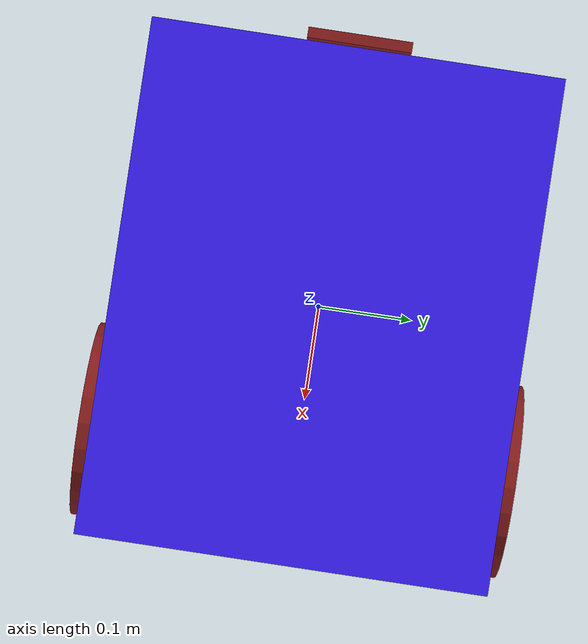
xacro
<?xml version="1.0"?>
<robot name="my_robot" xmlns:xacro="http://www.ros.org/wiki/xacro">

    <xacro:include filename="common_properties.xacro"/>
    <xacro:include filename="mobile_base_gazebo.xacro"/>
    <xacro:include filename="camera.xacro"/>

    <xacro:property name="base_length" value="0.5"/>
    <xacro:property name="base_width" value="0.4"/>
    <xacro:property name="base_height" value="0.2"/>

    <xacro:property name="right_wheel_length" value="0.02"/>
    <xacro:property name="left_wheel_length" value="0.02"/>

    <xacro:property name="caster_wheel_radius" value="0.05"/>

    <xacro:property name="wheel_radius" value="${2*caster_wheel_radius}"/>

    <link name="ground"/>

    <link name="base_link">
        <visual>
            <geometry>
                <box size="${base_length} ${base_width} ${base_height}"/>
            </geometry>
            <origin xyz="0 0 0" rpy="0 0 0"/>
            <material name="blue"/>
        </visual>
        <collision>
            <geometry>
                <box size="${base_length} ${base_width} ${base_height}"/>
            </geometry>
            <origin xyz="0 0 0" rpy="0 0 0"/>
        </collision>
        <xacro:box_inertia m="1" x="${base_length}" y="${base_width}" z="${base_height}"
                           o_xyz="0 0 0" o_rpy="0 0 0"/>

    </link>

    <link name="right_wheel_link">
        <visual>
            <geometry>
                <cylinder radius="${wheel_radius}" length="${right_wheel_length}"/>
            </geometry>
            <origin xyz="0 0 0" rpy="0 0 0"/>
            <material name="red"/>
        </visual>
        <collision>
            <geometry>
                <sphere radius="${wheel_radius}"/>
            </geometry>
            <origin xyz="0 0 0" rpy="0 0 0"/>
        </collision>
        <xacro:cylinder_inertia m="0.5" r="${wheel_radius}" l="${right_wheel_length}"
                                o_xyz="0 0 0" o_rpy="0 0 0"/>

    </link>

    <link name="left_wheel_link">
        <visual>
            <geometry>
                <cylinder radius="${wheel_radius}" length="${left_wheel_length}"/>
            </geometry>
            <origin xyz="0 0 0" rpy="0 0 0"/>
            <material name="red"/>
        </visual>
        <collision>
            <geometry>
                <sphere radius="${wheel_radius}"/>
            </geometry>
            <origin xyz="0 0 0" rpy="0 0 0"/>
        </collision>
        <xacro:cylinder_inertia m="0.5" r="${wheel_radius}" l="${left_wheel_length}"
                                o_xyz="0 0 0" o_rpy="0 0 0"/>

    </link>

    <link name="caster_wheel_link">
        <visual>
            <geometry>
                <sphere radius="${caster_wheel_radius}"/>
            </geometry>
            <origin xyz="0 0 0" rpy="0 0 0"/>
            <material name="red"/>
        </visual>
        <collision>
            <geometry>
                <sphere radius="${caster_wheel_radius}"/>
            </geometry>
            <origin xyz="0 0 0" rpy="0 0 0"/>
        </collision>
        <xacro:sphere_inertia m="0.2" r="${caster_wheel_radius}"
                              o_xyz="0 0 0" o_rpy="0 0 0"/>

    </link>

    <joint name="ground_base_joint" type="fixed">
        <parent link="ground"/>
        <child link="base_link"/>
        <origin xyz="0 0 ${wheel_radius+base_height/2}" rpy="0 0 0"/>
    </joint>

    <joint name="base_right_wheel" type="continuous">
        <parent link="base_link"/>
        <child link="right_wheel_link"/>
        <origin xyz="${0.3*base_length} ${(base_width+right_wheel_length)/2} -${base_height/2}" rpy="${-pi/2} 0 0"/>
        <axis xyz="0 0 -1"/>
    </joint>

    <joint name="base_left_wheel" type="continuous">
        <parent link="base_link"/>
        <child link="left_wheel_link"/>
        <origin xyz="${0.3*base_length} ${(-base_width-left_wheel_length)/2} -${base_height/2}" rpy="${-pi/2} 0 0"/>
        <axis xyz="0 0 -1"/>
    </joint>

    <joint name="base_caster_joint" type="continuous">
        <parent link="base_link"/>
        <child link="caster_wheel_link"/>
        <origin xyz="-${(base_length/4)} 0 -${caster_wheel_radius+base_height/2}" rpy="0 0 0"/>
        <axis xyz="0 -1 0"/>
    </joint>

</robot>

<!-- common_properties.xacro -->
<robot name="my_robot" xmlns:xacro="http://www.ros.org/wiki/xacro">

    <xacro:property name="base_length" value="0.5"/>
    <xacro:property name="base_width" value="0.4"/>
    <xacro:property name="base_height" value="0.2"/>

    <xacro:property name="right_wheel_length" value="0.02"/>
    <xacro:property name="left_wheel_length" value="0.02"/>

    <xacro:property name="caster_wheel_radius" value="0.05"/>

    <xacro:property name="wheel_radius" value="${2*caster_wheel_radius}"/>

    <material name="blue">
        <color rgba="0.2 0.1 0.9 1"/>
    </material>

    <material name="red">
        <color rgba="0.5 0.1 0.1 1"/>
    </material>

    <material name="yellow">
        <color rgba="1.0 1.0 0.0 1"/>
    </material>

    <material name="orange">
        <color rgba="1.0 0.65 0.0 1"/>
    </material>

    <material name="green">
        <color rgba="0.0 1.0 0.0 1"/>
    </material>

    <material name="purple">
        <color rgba="0.5 0.0 0.5 1"/>
    </material>

    <material name="white">
        <color rgba="1.0 1.0 1.0 1"/>
    </material>

    <material name="black">
        <color rgba="0.0 0.0 0.0 1"/>
    </material>

    <xacro:macro name="box_inertia" params="m x y z o_xyz o_rpy">

        <inertial>
            <mass value="${m}"/>
            <origin xyz="${o_xyz}" rpy="${o_rpy}"/>
            <inertia ixx="${(m/12)*(y**2 + z**2)}" ixy="0" ixz="0"
                     iyy="${(m/12)*(x**2 + z**2)}" iyz="0"
                     izz="${(m/12)*(y**2 + x**2)}"/>
        </inertial>

    </xacro:macro>

    <xacro:macro name="cylinder_inertia" params="m r l o_xyz o_rpy">

        <inertial>
            <mass value="${m}"/>
            <origin xyz="${o_xyz}" rpy="${o_rpy}"/>
            <inertia ixx="${(1/12)*m*(3*r**2 + l**2)}" ixy="0" ixz="0"
                     iyy="${(1/12)*m*(3*r**2 + l**2)}" iyz="0"
                     izz="${(1/2)*m*r**2}"/>
        </inertial>
    </xacro:macro>

    <xacro:macro name="sphere_inertia" params="m r o_xyz o_rpy">

        <inertial>
            <mass value="${m}"/>
            <origin xyz="${o_xyz}" rpy="${o_rpy}"/>
            <inertia ixx="${(2/5)*m*r**2}" ixy="0" ixz="0"
                     iyy="${(2/5)*m*r**2}" iyz="0"
                     izz="${(2/5)*m*r**2}"/>
        </inertial>
        </xacro:macro>
</robot>

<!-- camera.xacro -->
<robot name="my_robot" xmlns:xacro="http://www.ros.org/wiki/xacro">

    <xacro:include filename="common_properties.xacro"/>

    <xacro:property name="camera_length" value="0.01"/>
    <xacro:property name="camera_width" value="0.1"/>
    <xacro:property name="camera_height" value="0.05"/>

    <link name="camera_link">
        <visual>
            <geometry>
                <box size="${camera_length} ${camera_width} ${camera_height}"/>
            </geometry>
            <material name="red"/>
        </visual>
        <collision>
            <geometry>
                <box size="${camera_length} ${camera_width} ${camera_height}"/>
            </geometry>
        </collision>
        <xacro:box_inertia m="0.1" x="${camera_length}" y="${camera_width}" z="${camera_height}"
                           o_xyz="0 0 0" o_rpy="0 0 0"/>

    </link>

    <joint name="base_camera_joint" type="fixed">
        <parent link="base_link"/>
        <child link="camera_link"/>
        <origin xyz="-${(base_length+camera_length)/2} 0 ${base_height/2}" rpy="0 0 ${pi}"/>
    </joint>

    <gazebo reference="camera_link">
        <sensor name="camera" type="camera" >

            <camera>
                <horizontal_fov>1.3962634</horizontal_fov>
                <image>
                    <width>640</width>
                    <height>480</height>
                    <format>R8G8B8</format>
                </image>
                <clip>
                    <near>0.1</near>
                    <far>100</far>
                </clip>
                <noise>
                    <type>gaussian</type>
                    <mean>0.0</mean>
                    <stddev>0.007</stddev>
                </noise>
                <optical_frame_id>camera_link</optical_frame_id>
                <camera_info_topic>camera/camera_info</camera_info_topic>
            </camera>
            <always_on>true</always_on>
            <update_rate>20</update_rate>
            <visualise>true</visualise>
            <topic>camera/image_raw</topic>
        </sensor>
    </gazebo>
</robot>
